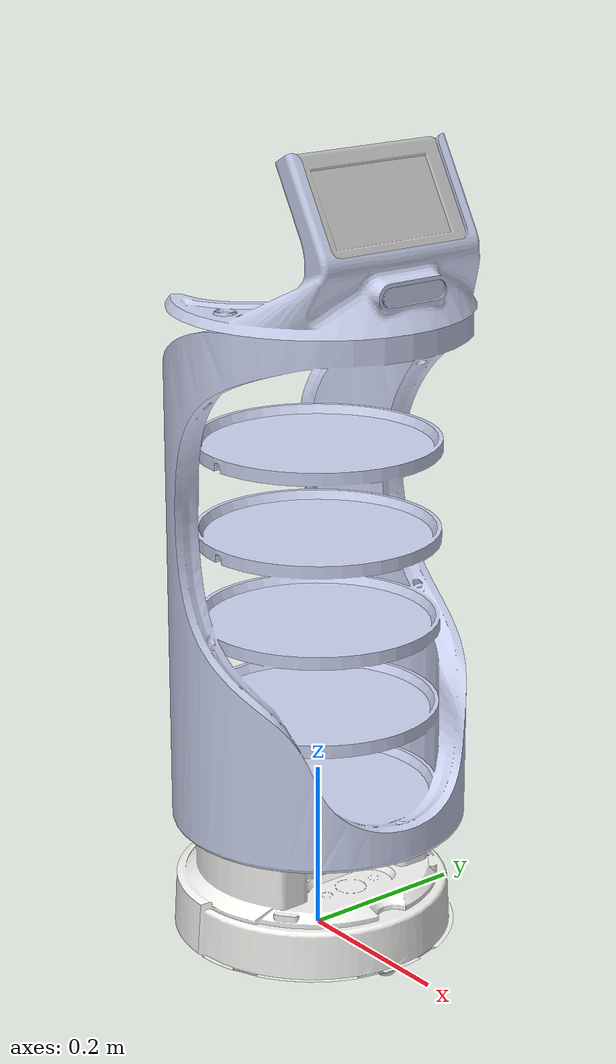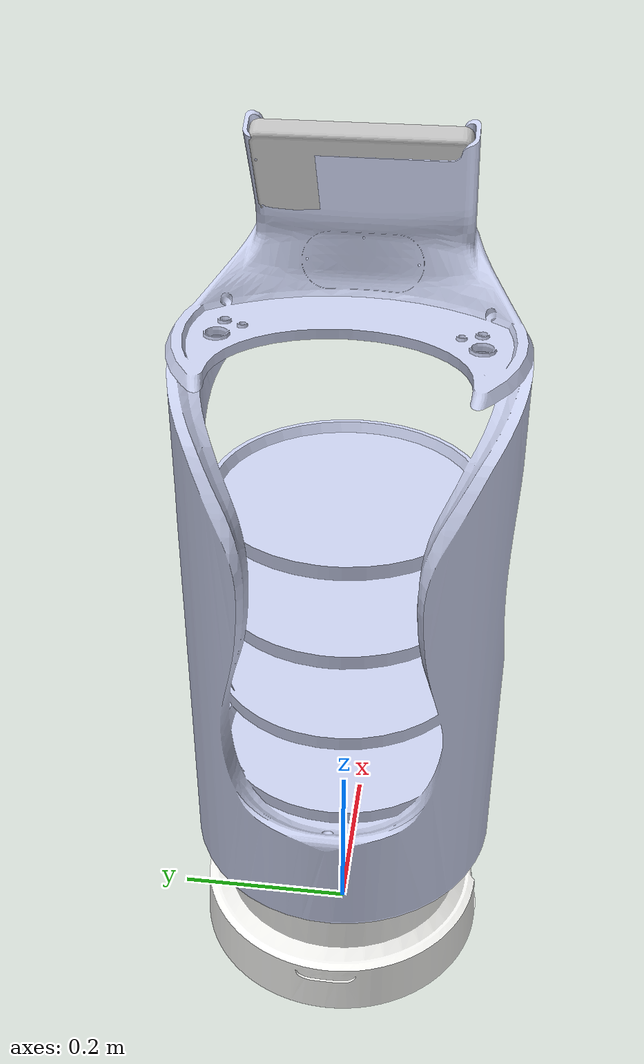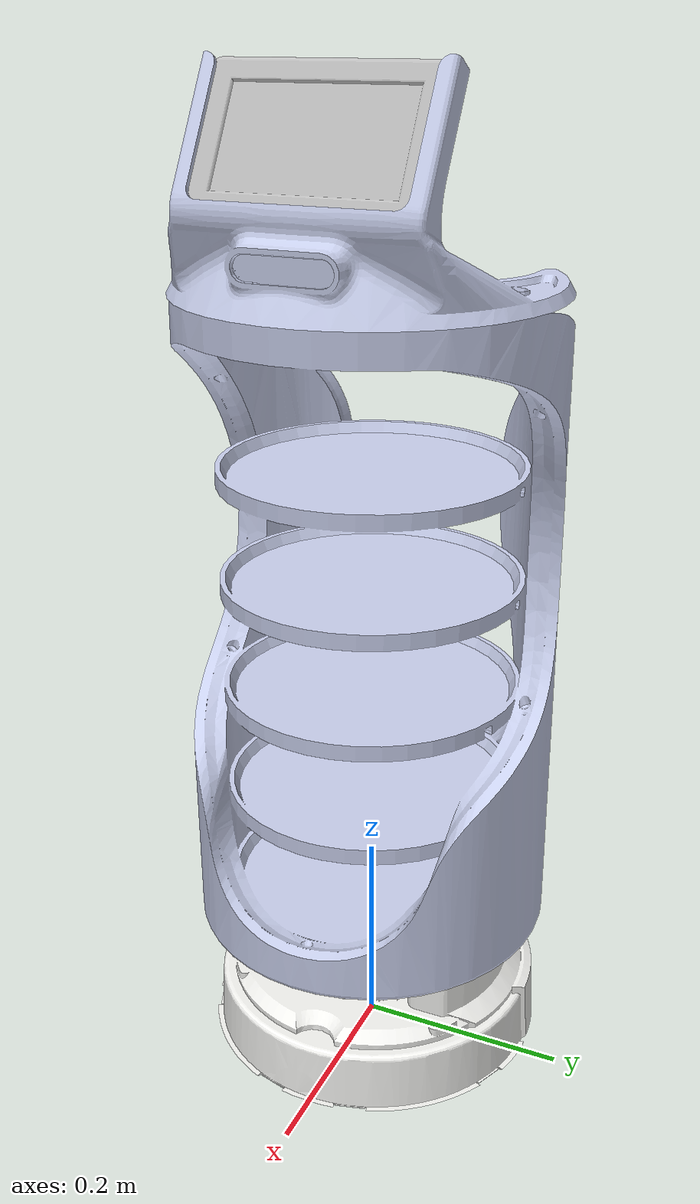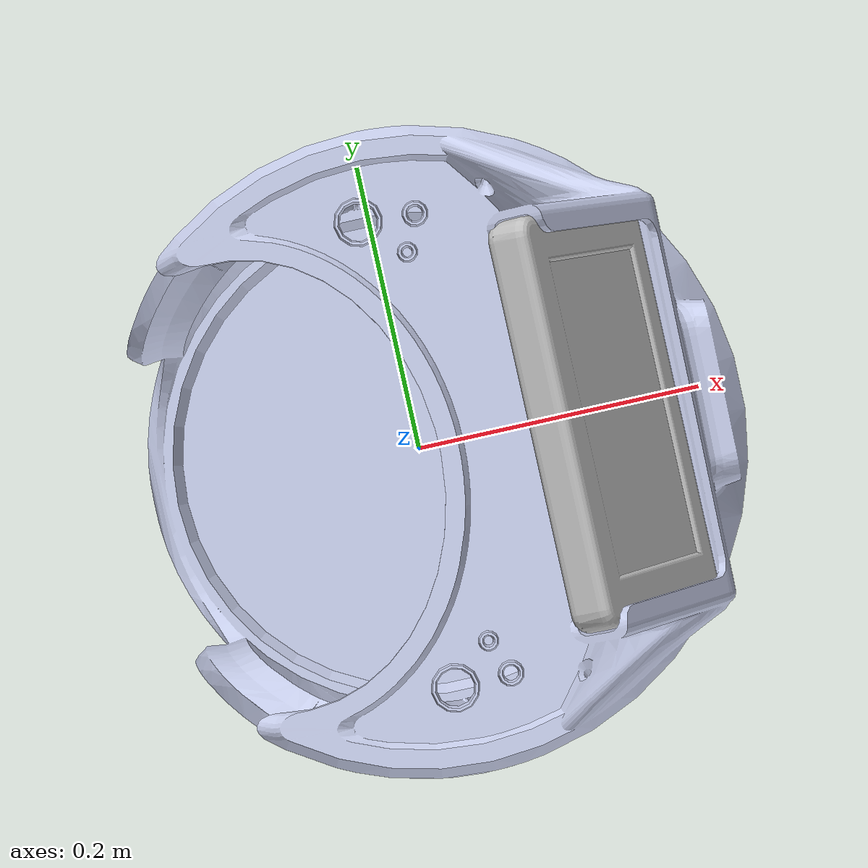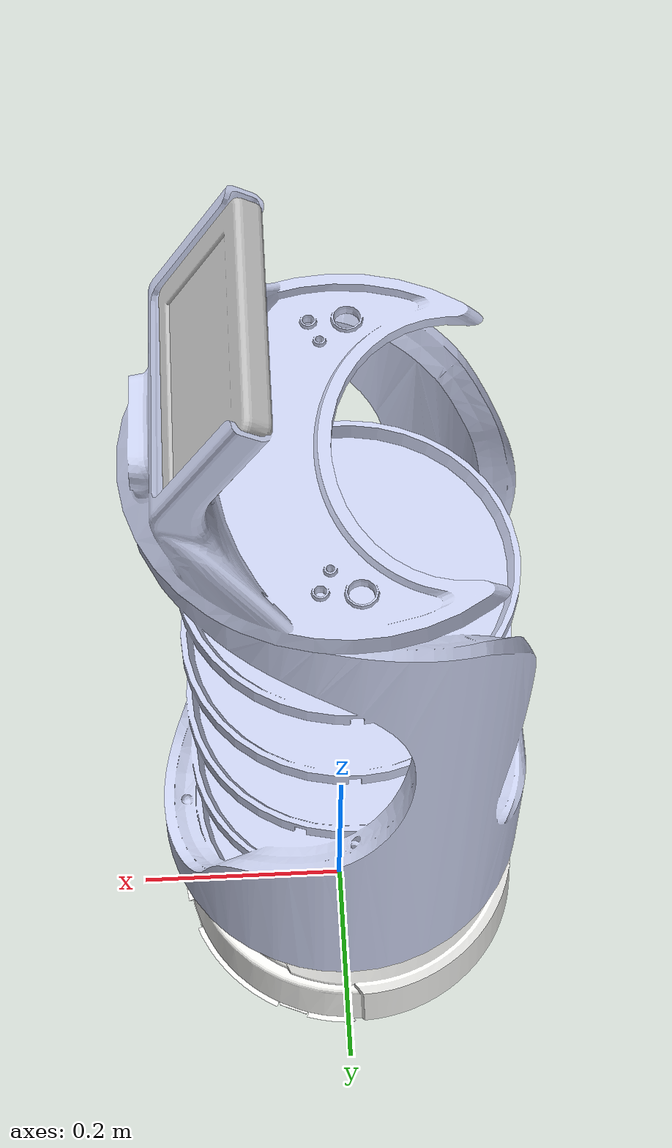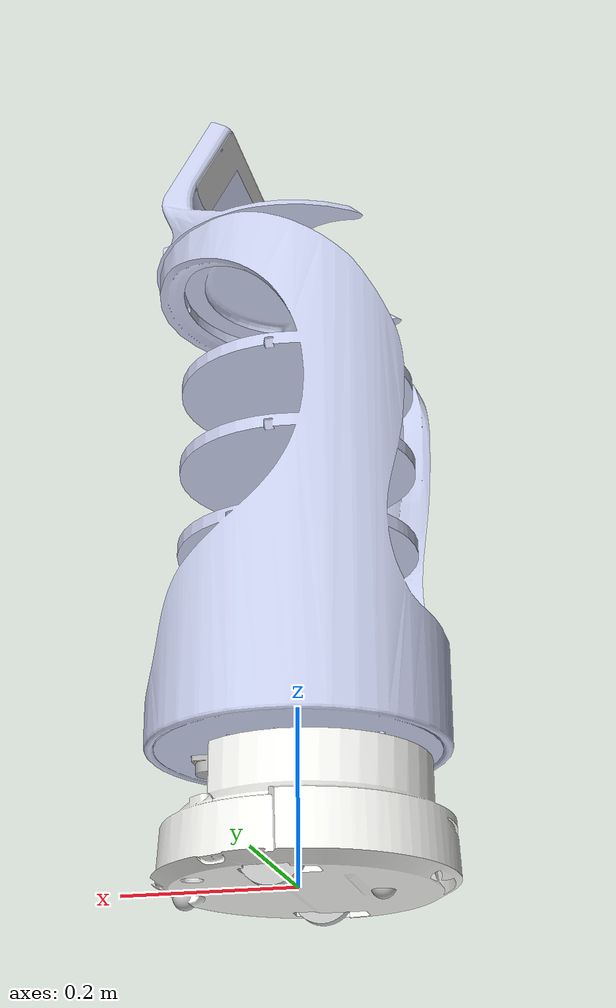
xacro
<?xml version="1.0"?>

<robot xmlns:xacro="http://www.ros.org/wiki/xacro"
  name="srbot">

  <!-- Links -->
  <link name="base_footprint"/>

  <!-- Base Link -->
  <link
    name="base_link">
    <inertial>
      <origin
        xyz="0.0331268533142108 -0.000432916937371297 0.0535713974422872"
        rpy="0 0 0" />
      <mass
        value="4.83639817382342" />
      <inertia
        ixx="0.0388616556706036"
        ixy="0.000529616499930697"
        ixz="0.00101739593148136"
        iyy="0.0228312438973894"
        iyz="3.82831626396926E-05"
        izz="0.0575066455054964" />
    </inertial>
    <visual>
      <origin
        xyz="0 0 0"
        rpy="0 0 0" />
      <geometry>
        <mesh
          filename="package://s_description/meshes/base_link.STL" />
      </geometry>
      <material
        name="">
        <color
          rgba="0.964705882352941 0.964705882352941 0.952941176470588 1" />
      </material>
    </visual>
    <collision>
      <origin
        xyz="0 0 0"
        rpy="0 0 0" />
      <geometry>
        <mesh
          filename="package://s_description/meshes/base_link.STL" />
      </geometry>
    </collision>
  </link>

  <joint name="base_joint" type="fixed">
    <parent link="base_footprint"/>
    <child link="base_link"/>
    <origin xyz="0.0 0.0 -0.007" rpy="0 0 0"/>
  </joint>

  <!-- Caster Link -->
  <link
    name="front_link">
    <inertial>
      <origin
        xyz="0 1.0842021724855E-19 0"
        rpy="0 0 0" />
      <mass
        value="0.012201049157502" />
      <inertia
        ixx="9.95396738164981E-07"
        ixy="4.75190822077712E-39"
        ixz="0"
        iyy="9.95396738164981E-07"
        iyz="3.04752357318865E-23"
        izz="9.95396738164981E-07" />
    </inertial>
    <visual>
      <origin
        xyz="0 0 0"
        rpy="0 0 0" />
      <geometry>
        <mesh
          filename="package://s_description/meshes/front_link.STL" />
      </geometry>
      <material
        name="">
        <color
          rgba="0.749019607843137 0.749019607843137 0.749019607843137 1" />
      </material>
    </visual>
    <collision>
      <origin xyz="0 0 0" rpy="0 0 0" />
      <geometry>
          <!-- Cambiar a una esfera como modelo de colisión -->
          <sphere radius="0.014281" />
      </geometry>
  </collision>
  </link>

  <link
    name="back_link">
    <inertial>
      <origin
        xyz="1.11022302462516E-16 -6.93889390390723E-18 0"
        rpy="0 0 0" />
      <mass
        value="0.012201049157502" />
      <inertia
        ixx="9.95396738164982E-07"
        ixy="-1.32348898008484E-23"
        ixz="8.66927083731437E-38"
        iyy="9.95396738164982E-07"
        iyz="-4.80636454845762E-23"
        izz="9.95396738164982E-07" />
    </inertial>
    <visual>
      <origin
        xyz="0 0 0"
        rpy="0 0 0" />
      <geometry>
        <mesh
          filename="package://s_description/meshes/back_link.STL" />
      </geometry>
      <material
        name="">
        <color
          rgba="0.749019607843137 0.749019607843137 0.749019607843137 1" />
      </material>
    </visual>
    <collision>
      <origin xyz="0 0 0" rpy="0 0 0" />
      <geometry>
          <!-- Cambiar a una esfera como modelo de colisión -->
          <sphere radius="0.014281" />
      </geometry>
  </collision>
  </link>

  <!-- Caster joint -->
  <joint
    name="caster_front_joint"
    type="revolute">
    <origin
      xyz="0.126 0 0.002981"
      rpy="-1.5708 0 0" />
    <parent
      link="base_link" />
    <child
      link="front_link" />
    <axis
      xyz="1 1 1" />
    <limit
      lower="0"
      upper="0"
      effort="0"
      velocity="0" />
  </joint>

  <joint
    name="caster_back_joint"
    type="revolute">
    <origin
      xyz="-0.091903 0 0.0054852"
      rpy="-1.5708 0.077667 0" />
    <parent
      link="base_link" />
    <child
      link="back_link" />
    <axis
      xyz="1 1 1" />
    <limit
      lower="0"
      upper="0"
      effort="0"
      velocity="0" />
  </joint>

  <!-- Camera Link -->
  <link
    name="camera_link">
    <inertial>
      <origin
        xyz="-0.0130485733276654 0.000249057510941841 -6.02472496720186E-05"
        rpy="0 0 0" />
      <mass
        value="0.0447531965749244" />
      <inertia
        ixx="2.72747579788412E-05"
        ixy="2.44896216734503E-07"
        ixz="-1.00813722652812E-09"
        iyy="3.94436239577304E-06"
        iyz="-2.92468588333206E-09"
        izz="2.73596827712822E-05" />
    </inertial>
    <visual>
      <origin
        xyz="0 0 0"
        rpy="0 0 0" />
      <geometry>
        <mesh
          filename="package://s_description/meshes/camera_link.STL" />
      </geometry>
      <material
        name="">
        <color
          rgba="0.792156862745098 0.819607843137255 0.933333333333333 1" />
      </material>
    </visual>
    <collision>
      <origin
        xyz="0 0 0"
        rpy="0 0 0" />
      <geometry>
        <mesh
          filename="package://s_description/meshes/camera_link.STL" />
      </geometry>
    </collision>
  </link>

  <!-- Camera Joint -->
  <joint
    name="camera_joint"
    type="fixed">
    <origin
      xyz="0.161 0 0.80167"
      rpy="0 0 0" />
    <parent
      link="base_link" />
    <child
      link="camera_link" />
    <axis
      xyz="0 0 0" />
  </joint>

  <!-- Platform Link -->

  <link
    name="body_link">
    <inertial>
      <origin
        xyz="0.0196490463239979 -0.00759747258083848 -2.54312289516001E-06"
        rpy="0 0 0" />
      <mass
        value="5.3667835678089" />
      <inertia
        ixx="0.191852604126404"
        ixy="-0.00180652023375761"
        ixz="-5.31889404871528E-05"
        iyy="0.101149701389595"
        iyz="5.32146569402063E-05"
        izz="0.16932952422593" />
    </inertial>
    <visual>
      <origin
        xyz="0 0 0"
        rpy="0 0 0" />
      <geometry>
        <mesh
          filename="package://s_description/meshes/body_link.STL" />
      </geometry>
      <material
        name="">
        <color
          rgba="0.792156862745098 0.819607843137255 0.933333333333333 1" />
      </material>
    </visual>
    <collision>
      <origin
        xyz="0 0 0"
        rpy="0 0 0" />
      <geometry>
        <mesh
          filename="package://s_description/meshes/body_link.STL" />
      </geometry>
    </collision>
  </link>
  <joint
    name="body_joint"
    type="fixed">
    <origin
      xyz="-0.032907 0 0.38597"
      rpy="1.5708 0 0" />
    <parent
      link="base_link" />
    <child
      link="body_link" />
    <axis
      xyz="0 0 0" />
  </joint>
  <link
    name="head_link">
    <inertial>
      <origin
        xyz="0.00849493948773139 0.0238193372028268 0.000292060864239385"
        rpy="0 0 0" />
      <mass
        value="1.07076821324471" />
      <inertia
        ixx="0.00952954443079687"
        ixy="-0.000539065696028081"
        ixz="-2.03838854365254E-05"
        iyy="0.0107354116844579"
        iyz="-3.6921034585701E-06"
        izz="0.00438988033691154" />
    </inertial>
    <visual>
      <origin
        xyz="0 0 0"
        rpy="0 0 0" />
      <geometry>
        <mesh
          filename="package://s_description/meshes/head_link.STL" />
      </geometry>
      <material
        name="">
        <color
          rgba="0.792156862745098 0.819607843137255 0.933333333333333 1" />
      </material>
    </visual>
    <collision>
      <origin
        xyz="0 0 0"
        rpy="0 0 0" />
      <geometry>
        <mesh
          filename="package://s_description/meshes/head_link.STL" />
      </geometry>
    </collision>
  </link>
  <joint
    name="head_joint"
    type="fixed">
    <origin
      xyz="0.085023 8.857E-05 0.77053"
      rpy="1.5708 0 -0.012333" />
    <parent
      link="base_link" />
    <child
      link="head_link" />
    <axis
      xyz="0 0 0" />
  </joint>
  <link
    name="screen_link">
    <inertial>
      <origin
        xyz="-0.00875103860863291 -0.00179905099732303 -0.0013426830002895"
        rpy="0 0 0" />
      <mass
        value="0.291835845220698" />
      <inertia
        ixx="0.00153477162859971"
        ixy="0.000200454438260883"
        ixz="-5.38305946263596E-07"
        iyy="0.00130267458234358"
        iyz="-7.69451434566266E-07"
        izz="0.000469996563152285" />
    </inertial>
    <visual>
      <origin
        xyz="0 0 0"
        rpy="0 0 0" />
      <geometry>
        <mesh
          filename="package://s_description/meshes/screen_link.STL" />
      </geometry>
      <material
        name="">
        <color
          rgba="0.749019607843137 0.749019607843137 0.749019607843137 1" />
      </material>
    </visual>
    <collision>
      <origin
        xyz="0 0 0"
        rpy="0 0 0" />
      <geometry>
        <mesh
          filename="package://s_description/meshes/screen_link.STL" />
      </geometry>
    </collision>
  </link>
  <joint
    name="screen_joint"
    type="fixed">
    <origin
      xyz="0.10714 0 0.88899"
      rpy="1.5708 0 0" />
    <parent
      link="base_link" />
    <child
      link="screen_link" />
    <axis
      xyz="0 0 0" />
  </joint>

  <!-- Laser Link -->
  <link
    name="laser_link">
    <inertial>
      <origin
        xyz="1.09809412386364E-05 -9.50160934408695E-05 0.0112261274669363"
        rpy="0 0 0" />
      <mass
        value="0.0403779088326407" />
      <inertia
        ixx="7.61672430725859E-06"
        ixy="9.92757538260664E-08"
        ixz="-5.59827664990937E-09"
        iyy="7.68868886195227E-06"
        iyz="5.26078383460514E-08"
        izz="8.28485448822856E-06" />
    </inertial>
    <visual>
      <origin
        xyz="0 0 0"
        rpy="0 0 0" />
      <geometry>
        <mesh
          filename="package://s_description/meshes/laser_link.STL" />
      </geometry>
      <material
        name="">
        <color
          rgba="0.690196078431373 0.690196078431373 0.690196078431373 1" />
      </material>
    </visual>
    <collision>
      <origin
        xyz="0 0 0"
        rpy="0 0 0" />
      <geometry>
        <mesh
          filename="package://s_description/meshes/laser_link.STL" />
      </geometry>
    </collision>
  </link>

  <!-- Laser Joint -->
  <joint
    name="laser_joint"
    type="fixed">
    <origin
      xyz="0.1 0 0.1428"
      rpy="0 0 0" />
    <parent
      link="base_link" />
    <child
      link="laser_link" />
    <axis
      xyz="0 0 0" />
  </joint>

  <!-- Wheel Right Link -->
  <link
    name="right_link">
    <inertial>
      <origin
        xyz="-2.22044604925031E-16 3.88578058618805E-16 -3.88578058618805E-16"
        rpy="0 0 0" />
      <mass
        value="0.0610725611857856" />
      <inertia
        ixx="2.0932620346428E-05"
        ixy="3.39520287514895E-38"
        ixz="1.85730747534606E-38"
        iyy="2.0932620346428E-05"
        iyz="6.26429932491746E-21"
        izz="3.95750196483891E-05" />
    </inertial>
    <visual>
      <origin
        xyz="0 0 0"
        rpy="0 0 0" />
      <geometry>
        <mesh
          filename="package://s_description/meshes/right_link.STL" />
      </geometry>
      <material
        name="">
        <color
          rgba="0.749019607843137 0.749019607843137 0.749019607843137 1" />
      </material>
    </visual>
    <collision>
        <origin xyz="0 0 -0.0001" rpy="0 0 0" />
        <geometry>
            <!-- Cambiar a un cilindro como modelo de colisión -->
            <cylinder radius="0.036" length="0.015" />
        </geometry>
    </collision>
  </link>

  <!-- Wheel Right Joint -->
  <joint
    name="right_joint"
    type="continuous">
    <origin
      xyz="-0.00049683 -0.11755 0.02507"
      rpy="-1.5708 0 0" />
    <parent
      link="base_link" />
    <child
      link="right_link" />
    <axis
      xyz="0 0 1" />
  </joint>

  <!-- Wheel Left Link -->
  <link
    name="left_link">
    <inertial>
      <origin
        xyz="-4.44089209850063E-16 3.95516952522712E-16 4.9960036108132E-16"
        rpy="0 0 0" />
      <mass
        value="0.0610725611857854" />
      <inertia
        ixx="2.09326203464279E-05"
        ixy="4.13994203062489E-27"
        ixz="-2.29865717335984E-22"
        iyy="2.09326203464279E-05"
        iyz="-1.21249430195987E-20"
        izz="3.95750196483889E-05" />
    </inertial>
    <visual>
      <origin
        xyz="0 0 0"
        rpy="0 0 0" />
      <geometry>
        <mesh
          filename="package://s_description/meshes/left_link.STL" />
      </geometry>
      <material
        name="">
        <color
          rgba="0.749019607843137 0.749019607843137 0.749019607843137 1" />
      </material>
    </visual>
    <collision>
        <origin xyz="0 0 -0.0001" rpy="0 0 0" />
        <geometry>
            <!-- Cambiar a un cilindro como modelo de colisión -->
            <cylinder radius="0.036" length="0.015" />
        </geometry>
    </collision>
  </link>

  <!-- Wheel Left Joint -->
  <joint
    name="left_joint"
    type="continuous">
    <origin
      xyz="-0.00049683 0.11755 0.02107"
      rpy="-1.5708 0 0" />
    <parent
      link="base_link" />
    <child
      link="left_link" />
    <axis
      xyz="0 0 1" />
  </joint>

  <joint name="imu_joint" type="fixed">
    <parent link="base_link"/>
    <child link="imu_link"/>
    <origin xyz="0 0 0" rpy="0 0 0"/>
  </joint>

  <link name="imu_link"/>

  <gazebo reference="base_link">
    <material>Gazebo/DarkGrey</material>
  </gazebo>

  <gazebo reference="body_link">
    <material>Gazebo/Orange</material>
  </gazebo>

  <!-- Wheels -->
  <gazebo reference="left_link">
    <material>Gazebo/Black</material>
    <mu1>10000.0</mu1>
    <mu2>10000.0</mu2>
    <kp>500000.0</kp>
    <kd>10.0</kd>
    <minDepth>0.001</minDepth>
    <maxVel>0.1</maxVel>
    <fdir1>1 0 0</fdir1>
  </gazebo>

  <gazebo reference="right_link">
    <material>Gazebo/Black</material>
    <mu1>10000.0</mu1>
    <mu2>10000.0</mu2>
    <kp>500000.0</kp>
    <kd>10.0</kd>
    <minDepth>0.001</minDepth>
    <maxVel>0.1</maxVel>
    <fdir1>1 0 0</fdir1>
  </gazebo>

  <gazebo reference="front_link">
    <mu1>0.1</mu1>
    <mu2>0.1</mu2>
    <kp>1000000.0</kp>
    <kd>100.0</kd>
    <minDepth>0.001</minDepth>
    <maxVel>1.0</maxVel>
    <material>Gazebo/FlatBlack</material>
  </gazebo>

  <gazebo reference="back_link">
    <mu1>0.1</mu1>
    <mu2>0.1</mu2>
    <kp>1000000.0</kp>
    <kd>100.0</kd>
    <minDepth>0.001</minDepth>
    <maxVel>1.0</maxVel>
    <material>Gazebo/FlatBlack</material>
  </gazebo>
  <gazebo>
    <!-- Plugin -->
    <plugin name="wheel_drive_controller" filename="libgazebo_ros_diff_drive.so">

      <!-- wheels -->
      <num_wheel_pairs>1</num_wheel_pairs>
      <left_joint>left_joint</left_joint>
      <right_joint>right_joint</right_joint>

      <!-- kinematics -->
      <wheel_separation>0.235100</wheel_separation>
      <wheel_diameter>0.062</wheel_diameter>
      <max_wheel_torque>20.0</max_wheel_torque>
      <max_wheel_acceleration>10.0</max_wheel_acceleration>

      <!-- odometry  -->
      <odometry_frame>odom</odometry_frame>

      <robot_base_frame>base_footprint</robot_base_frame>

      <!-- topic & re remappings -->
      <ros>
        <namespace>/</namespace>
        <argument>/cmd_vel:=cmd_vel</argument>
        <argument>/odom:=odom</argument>
      </ros>

      <publish_odom>true</publish_odom>
      <publish_odom_tf>true</publish_odom_tf>
      <publish_wheel_tf>false</publish_wheel_tf>
      <update_rate>100.0</update_rate>
    </plugin>
  </gazebo>

  <!-- ***** GAZEBO LASER ****** -->
  <gazebo reference="laser_link">
      <material>Gazebo/Blue</material>

      <sensor name="laser" type="ray">
          <pose> 0 0 0 0 0 0 </pose>
          <visualize>true</visualize>
          <update_rate>5.0</update_rate>
          <ray>
              <scan>
                  <horizontal>
                      <samples>360</samples>
                      <resolution>1</resolution>
                      <min_angle>-1.57</min_angle>
                      <max_angle>1.57</max_angle>
                  </horizontal>
              </scan>
              <range>
                  <min>0.2</min>
                  <max>1.5</max>
                  <resolution>0.015</resolution>
              </range>
          </ray>
          <plugin name="laser_controller" filename="libgazebo_ros_ray_sensor.so">
              <ros>
                  <argument>~/out:=scan</argument>
              </ros>
              <output_type>sensor_msgs/LaserScan</output_type>
              <frame_name>laser_link</frame_name>
          </plugin>
      </sensor>
  </gazebo>

  <!-- **** GAZEBO CAM_LINK **** -->
  <gazebo reference="camera_link">
      <material>Gazebo/Black</material>

      <sensor name="camera" type="camera">
          <pose> 0 0 0 0 0 0 </pose>
          <visualize>true</visualize>
          <update_rate>30</update_rate>
          <camera>
              <horizontal_fov>1.085595</horizontal_fov>
              <image>
                  <format>R8G8B8</format>
                  <width>640</width>
                  <height>480</height>
              </image>
              <clip>
                  <near>0.03</near>
                  <far>100</far>
              </clip>
          </camera>
          <plugin name="camera_controller" filename="libgazebo_ros_camera.so">
              <frame_name>camera_link</frame_name>
          </plugin>
      </sensor>
  </gazebo>

  <!-- **** GAZEBO IMU_LINK **** -->
  <gazebo reference="imu_link">
    <gravity>true</gravity>
    <sensor name="imu_sensor" type="imu">
      <always_on>true</always_on>
      <update_rate>100</update_rate>
      <visualize>true</visualize>
      <topic>__default_topic__</topic>
      <plugin filename="libgazebo_ros_imu_sensor.so" name="imu_plugin">
        <topicName>imu</topicName>
        <bodyName>imu_link</bodyName>
        <updateRateHZ>10.0</updateRateHZ>
        <gaussianNoise>0.0</gaussianNoise>
        <xyzOffset>0 0 0</xyzOffset>
        <rpyOffset>0 0 0</rpyOffset>
        <frameName>imu_link</frameName>
        <initialOrientationAsReference>false</initialOrientationAsReference>
      </plugin>
      <pose>0 0 0 0 0 0</pose>
    </sensor>
  </gazebo>
</robot>
